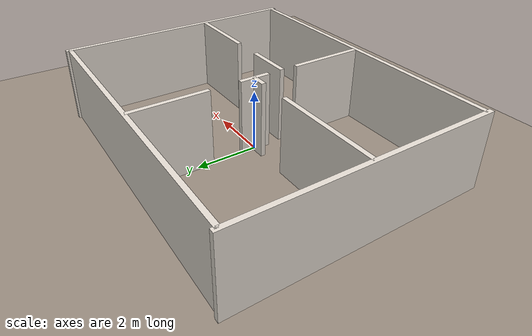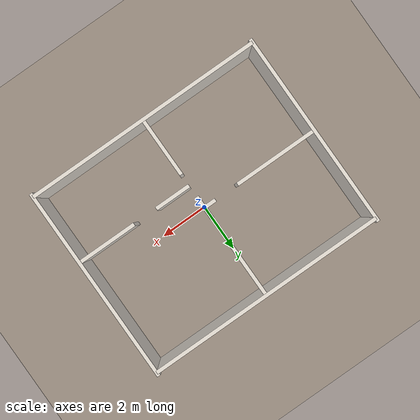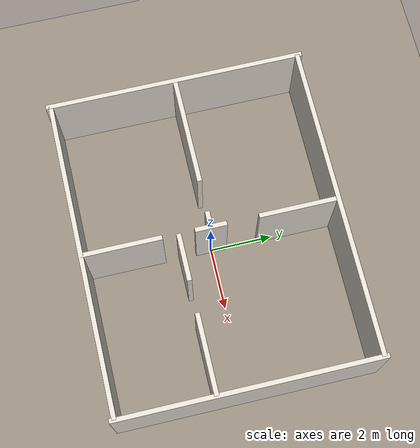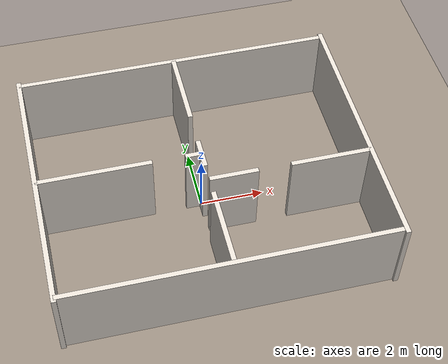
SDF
<?xml version="1.0"?>
<sdf version="1.9">
  <world name="house">

    <!-- System plugins -->
    <plugin filename="gz-sim-physics-system" name="gz::sim::v8::systems::Physics"/>
    <plugin filename="gz-sim-scene-broadcaster-system" name="gz::sim::v8::systems::SceneBroadcaster"/>
    <plugin filename="gz-sim-user-commands-system" name="gz::sim::v8::systems::UserCommands"/>
    <plugin filename="gz-sim-sensors-system" name="gz::sim::v8::systems::Sensors">
      <render_engine>ogre2</render_engine>
    </plugin>

    <!-- Physics -->
    <physics name="1ms" type="ode">
      <real_time_update_rate>1000</real_time_update_rate>
      <max_step_size>0.001</max_step_size>
      <real_time_factor>1</real_time_factor>
      <ode>
        <solver>
          <type>quick</type>
          <iters>150</iters>
          <precon_iters>0</precon_iters>
          <sor>1.4</sor>
        </solver>
        <constraints>
          <cfm>1e-5</cfm>
          <erp>0.2</erp>
          <contact_max_correcting_vel>2000</contact_max_correcting_vel>
          <contact_surface_layer>0.01</contact_surface_layer>
        </constraints>
      </ode>
    </physics>

    <!-- Scene / Lighting -->
    <scene>
      <ambient>0.5 0.45 0.4 1</ambient>
      <background>0.6 0.7 0.8 1</background>
      <shadows>false</shadows>
    </scene>

    <light name="sun" type="directional">
      <cast_shadows>false</cast_shadows>
      <pose>0 0 10 0 0 0</pose>
      <diffuse>0.8 0.8 0.75 1</diffuse>
      <specular>0.2 0.2 0.2 1</specular>
      <direction>-0.5 0.1 -0.9</direction>
    </light>

    <!-- Ground plane -->
    <model name="ground_plane">
      <static>true</static>
      <link name="link">
        <collision name="collision">
          <geometry><plane><normal>0 0 1</normal><size>100 100</size></plane></geometry>
          <surface><friction><ode><mu>1</mu><mu2>1</mu2></ode></friction></surface>
        </collision>
        <visual name="visual">
          <cast_shadows>false</cast_shadows>
          <geometry><plane><normal>0 0 1</normal><size>100 100</size></plane></geometry>
          <material>
            <ambient>0.55 0.5 0.45 1</ambient>
            <diffuse>0.6 0.55 0.5 1</diffuse>
          </material>
        </visual>
      </link>
    </model>

    <model name="wall_north">
      <static>true</static>
      <pose>0 4.0 1.25 0 0 0</pose>
      <link name="link">
        <collision name="collision"><geometry><box><size>10.0 0.15 2.5</size></box></geometry></collision>
        <visual name="visual"><geometry><box><size>10.0 0.15 2.5</size></box></geometry>
          <material><ambient>0.85 0.82 0.78 1</ambient><diffuse>0.9 0.87 0.83 1</diffuse></material>
        </visual>
      </link>
    </model>

    <model name="wall_south">
      <static>true</static>
      <pose>0 -4.0 1.25 0 0 0</pose>
      <link name="link">
        <collision name="collision"><geometry><box><size>10.0 0.15 2.5</size></box></geometry></collision>
        <visual name="visual"><geometry><box><size>10.0 0.15 2.5</size></box></geometry>
          <material><ambient>0.85 0.82 0.78 1</ambient><diffuse>0.9 0.87 0.83 1</diffuse></material>
        </visual>
      </link>
    </model>

    <model name="wall_east">
      <static>true</static>
      <pose>5.0 0 1.25 0 0 0</pose>
      <link name="link">
        <collision name="collision"><geometry><box><size>0.15 8.3 2.5</size></box></geometry></collision>
        <visual name="visual"><geometry><box><size>0.15 8.3 2.5</size></box></geometry>
          <material><ambient>0.85 0.82 0.78 1</ambient><diffuse>0.9 0.87 0.83 1</diffuse></material>
        </visual>
      </link>
    </model>

    <model name="wall_west">
      <static>true</static>
      <pose>-5.0 0 1.25 0 0 0</pose>
      <link name="link">
        <collision name="collision"><geometry><box><size>0.15 8.3 2.5</size></box></geometry></collision>
        <visual name="visual"><geometry><box><size>0.15 8.3 2.5</size></box></geometry>
          <material><ambient>0.85 0.82 0.78 1</ambient><diffuse>0.9 0.87 0.83 1</diffuse></material>
        </visual>
      </link>
    </model>

    <!-- Central wall: x=0, y from +4.0 down to +1.5 (top section) -->
    <model name="wall_center_top">
      <static>true</static>
      <pose>0 2.75 1.25 0 0 0</pose>
      <link name="link">
        <collision name="collision"><geometry><box><size>0.15 2.5 2.5</size></box></geometry></collision>
        <visual name="visual"><geometry><box><size>0.15 2.5 2.5</size></box></geometry>
          <material><ambient>0.85 0.82 0.78 1</ambient><diffuse>0.9 0.87 0.83 1</diffuse></material>
        </visual>
      </link>
    </model>

    <!-- Central wall: x=0, y from +0.5 down to -0.5 (middle section) -->
    <model name="wall_center_mid">
      <static>true</static>
      <pose>0 0 1.25 0 0 0</pose>
      <link name="link">
        <collision name="collision"><geometry><box><size>0.15 1.0 2.5</size></box></geometry></collision>
        <visual name="visual"><geometry><box><size>0.15 1.0 2.5</size></box></geometry>
          <material><ambient>0.85 0.82 0.78 1</ambient><diffuse>0.9 0.87 0.83 1</diffuse></material>
        </visual>
      </link>
    </model>

    <!-- Central wall: x=0, y from -1.5 down to -4.0 (bottom section) -->
    <model name="wall_center_bottom">
      <static>true</static>
      <pose>0 -2.75 1.25 0 0 0</pose>
      <link name="link">
        <collision name="collision"><geometry><box><size>0.15 2.5 2.5</size></box></geometry></collision>
        <visual name="visual"><geometry><box><size>0.15 2.5 2.5</size></box></geometry>
          <material><ambient>0.85 0.82 0.78 1</ambient><diffuse>0.9 0.87 0.83 1</diffuse></material>
        </visual>
      </link>
    </model>

    <!-- Left E-W wall: western section, x from -5.0 to -1.5 -->
    <model name="wall_left_ew_west">
      <static>true</static>
      <pose>-3.25 0 1.25 0 0 0</pose>
      <link name="link">
        <collision name="collision"><geometry><box><size>3.5 0.15 2.5</size></box></geometry></collision>
        <visual name="visual"><geometry><box><size>3.5 0.15 2.5</size></box></geometry>
          <material><ambient>0.85 0.82 0.78 1</ambient><diffuse>0.9 0.87 0.83 1</diffuse></material>
        </visual>
      </link>
    </model>

    <!-- Left E-W wall: eastern stub, x from -0.5 to 0.0 -->
    <model name="wall_left_ew_east">
      <static>true</static>
      <pose>-0.25 0 1.25 0 0 0</pose>
      <link name="link">
        <collision name="collision"><geometry><box><size>0.5 0.15 2.5</size></box></geometry></collision>
        <visual name="visual"><geometry><box><size>0.5 0.15 2.5</size></box></geometry>
          <material><ambient>0.85 0.82 0.78 1</ambient><diffuse>0.9 0.87 0.83 1</diffuse></material>
        </visual>
      </link>
    </model>

    <!-- Right E-W wall: western section, x from 0.0 to +1.5 -->
    <model name="wall_right_ew_west">
      <static>true</static>
      <pose>0.75 -1.0 1.25 0 0 0</pose>
      <link name="link">
        <collision name="collision"><geometry><box><size>1.5 0.15 2.5</size></box></geometry></collision>
        <visual name="visual"><geometry><box><size>1.5 0.15 2.5</size></box></geometry>
          <material><ambient>0.85 0.82 0.78 1</ambient><diffuse>0.9 0.87 0.83 1</diffuse></material>
        </visual>
      </link>
    </model>

    <!-- Right E-W wall: eastern section, x from +2.5 to +5.0 -->
    <model name="wall_right_ew_east">
      <static>true</static>
      <pose>3.75 -1.0 1.25 0 0 0</pose>
      <link name="link">
        <collision name="collision"><geometry><box><size>2.5 0.15 2.5</size></box></geometry></collision>
        <visual name="visual"><geometry><box><size>2.5 0.15 2.5</size></box></geometry>
          <material><ambient>0.85 0.82 0.78 1</ambient><diffuse>0.9 0.87 0.83 1</diffuse></material>
        </visual>
      </link>
    </model>

  </world>
</sdf>
